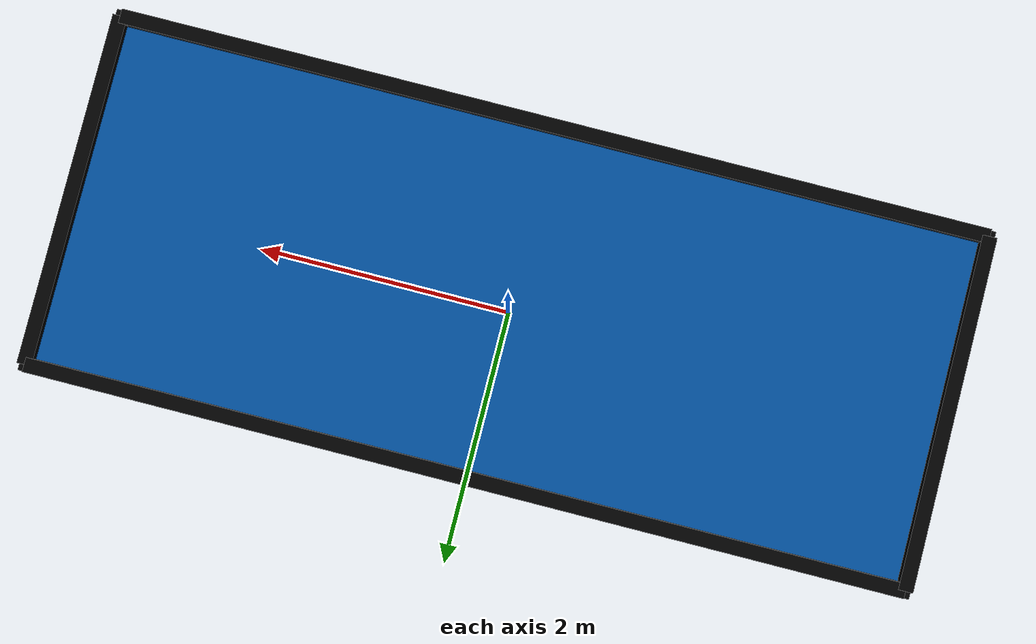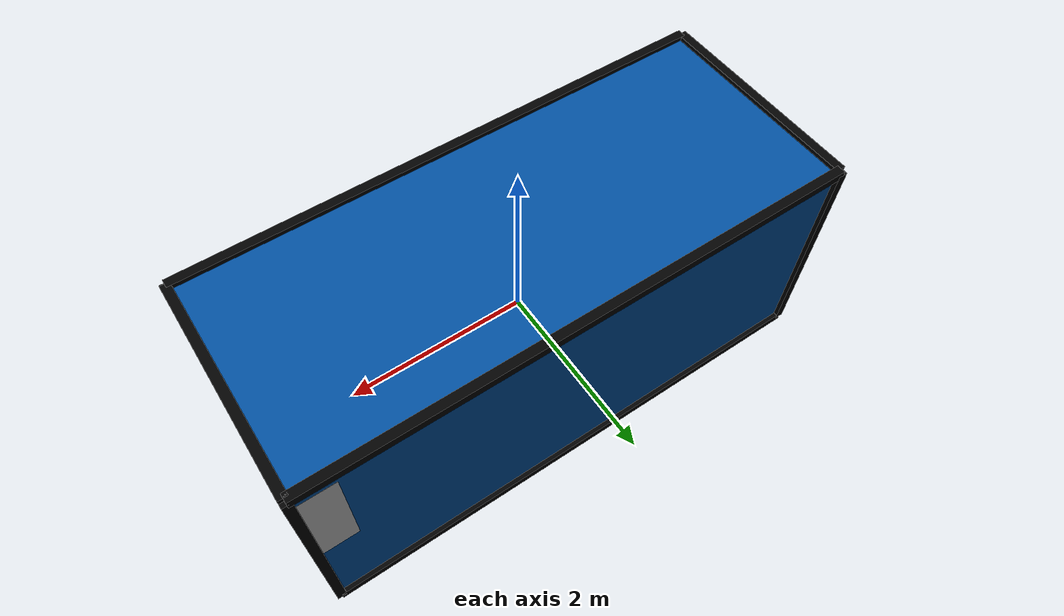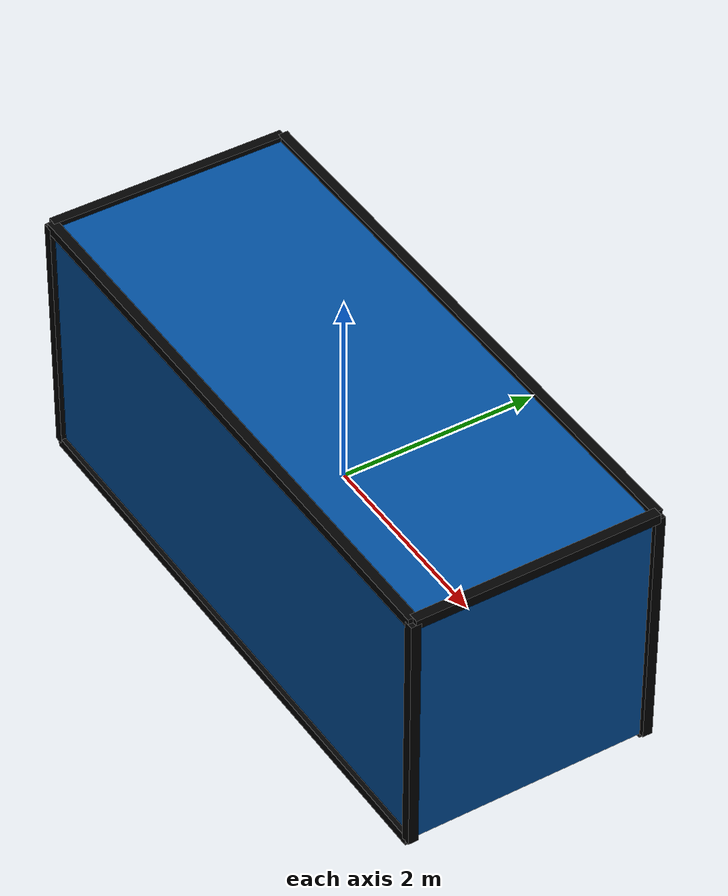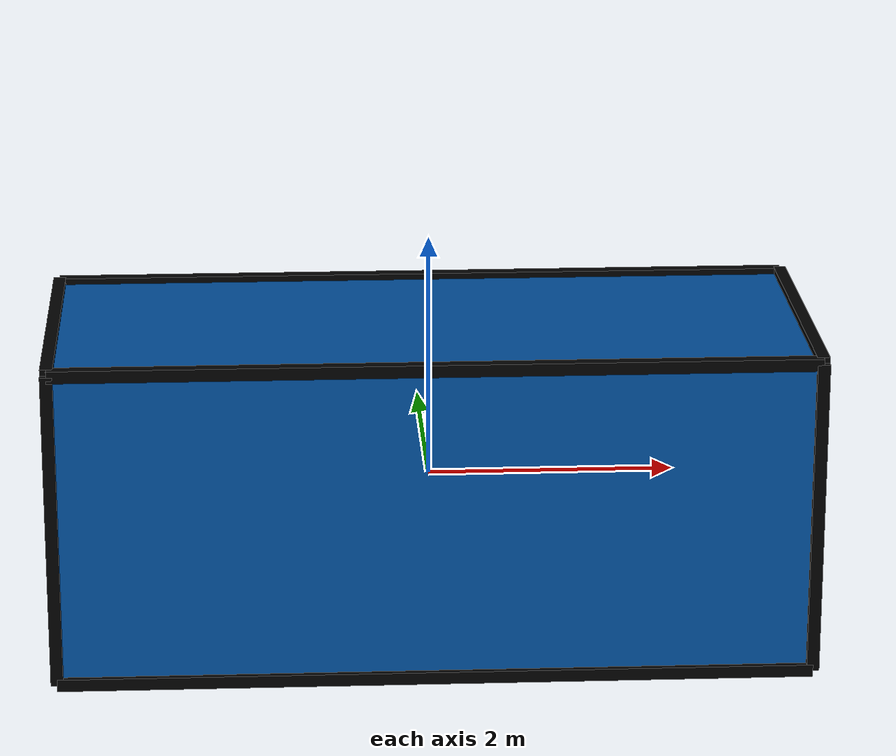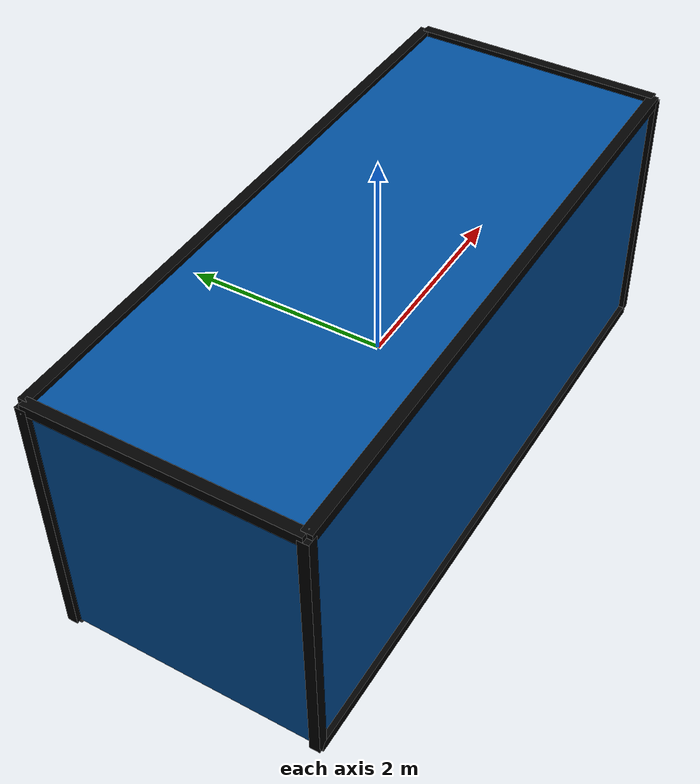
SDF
<?xml version="1.0" ?>
<sdf version="1.8">
  <model name="container_R2C6S2">
    <static>true</static>
    <link name="link">
      <visual name="body"><geometry><box><size>6.06 2.44 2.59</size></box></geometry>
        <material><ambient>0 0.3 0.6 1</ambient><diffuse>0 0.3 0.6 1</diffuse></material>
      </visual>

                 <visual name="vertical_edge_1">
                <pose>3.03 1.22 0 0 0 0</pose>
                <geometry><box><size>0.1 0.1 2.59</size></box></geometry>
                <material><ambient>0 0 0 1</ambient><diffuse>0 0 0 1</diffuse></material>
            </visual>
            <visual name="vertical_edge_2">
                <pose>3.03 -1.22 0 0 0 0</pose>
                <geometry><box><size>0.1 0.1 2.59</size></box></geometry>
                <material><ambient>0 0 0 1</ambient><diffuse>0 0 0 1</diffuse></material>
            </visual>
            <visual name="vertical_edge_3">
                <pose>-3.03 1.22 0 0 0 0</pose>
                <geometry><box><size>0.1 0.1 2.59</size></box></geometry>
                <material><ambient>0 0 0 1</ambient><diffuse>0 0 0 1</diffuse></material>
            </visual>
            <visual name="vertical_edge_4">
                <pose>-3.03 -1.22 0 0 0 0</pose>
                <geometry><box><size>0.1 0.1 2.59</size></box></geometry>
                <material><ambient>0 0 0 1</ambient><diffuse>0 0 0 1</diffuse></material>
            </visual>
            <visual name="edge_long_top_left">
                <pose>0 1.22 1.295 0 0 0</pose>
                <geometry><box><size>6.06 0.1 0.1</size></box></geometry>
                <material><ambient>0 0 0 1</ambient><diffuse>0 0 0 1</diffuse></material>
            </visual>
            <visual name="edge_long_top_right">
                <pose>0 -1.22 1.295 0 0 0</pose>
                <geometry><box><size>6.06 0.1 0.1</size></box></geometry>
                <material><ambient>0 0 0 1</ambient><diffuse>0 0 0 1</diffuse></material>
            </visual>
            <visual name="edge_long_bottom_left">
                <pose>0 1.22 -1.295 0 0 0</pose>
                <geometry><box><size>6.06 0.1 0.1</size></box></geometry>
                <material><ambient>0 0 0 1</ambient><diffuse>0 0 0 1</diffuse></material>
            </visual>
            <visual name="edge_long_bottom_right">
                <pose>0 -1.22 -1.295 0 0 0</pose>
                <geometry><box><size>6.06 0.1 0.1</size></box></geometry>
                <material><ambient>0 0 0 1</ambient><diffuse>0 0 0 1</diffuse></material>
            </visual>

            <visual name="edge_width_top_front">
                <pose>3.03 0 1.295 0 0 0</pose>
                <geometry><box><size>0.1 2.44 0.1</size></box></geometry>
                <material><ambient>0 0 0 1</ambient><diffuse>0 0 0 1</diffuse></material>
            </visual>
            <visual name="edge_width_top_back">
                <pose>-3.03 0 1.295 0 0 0</pose>
                <geometry><box><size>0.1 2.44 0.1</size></box></geometry>
                <material><ambient>0 0 0 1</ambient><diffuse>0 0 0 1</diffuse></material>
            </visual>

      <visual name="id_plate">
        <pose>2.8 1.226 0.5 0 1.5708 1.5708</pose>
        <geometry><plane><normal>0 0 1</normal><size>1.2 0.4</size></plane></geometry>
        <material><pbr><metal><albedo_map>model://container_R2C6S2/materials/textures/label_R2C6S2.png</albedo_map>
        <emissive_map>model://container_R2C6S2/materials/textures/label_R2C6S2.png</emissive_map></metal></pbr></material>
      </visual>
      </link>
  </model>
</sdf>
